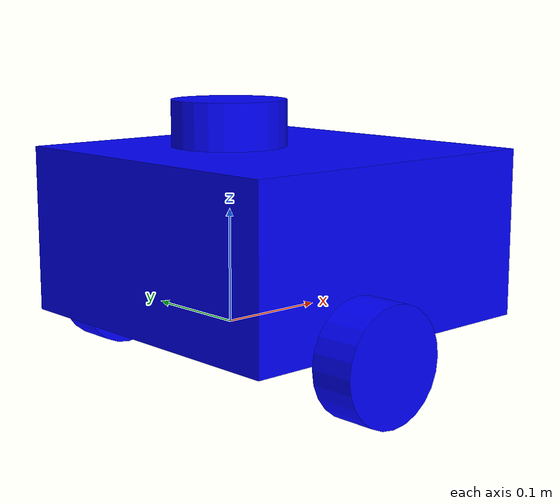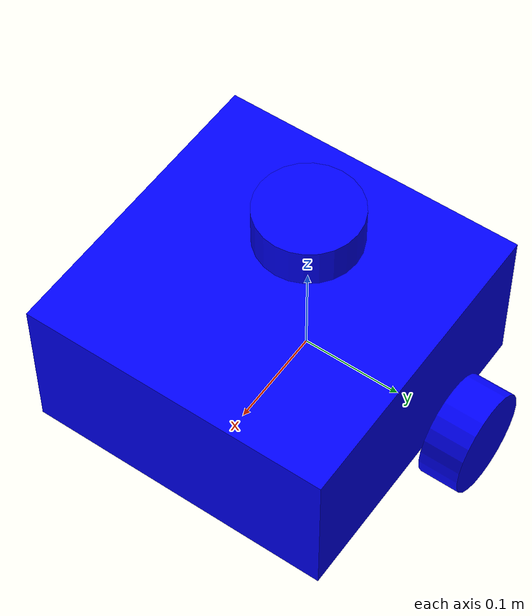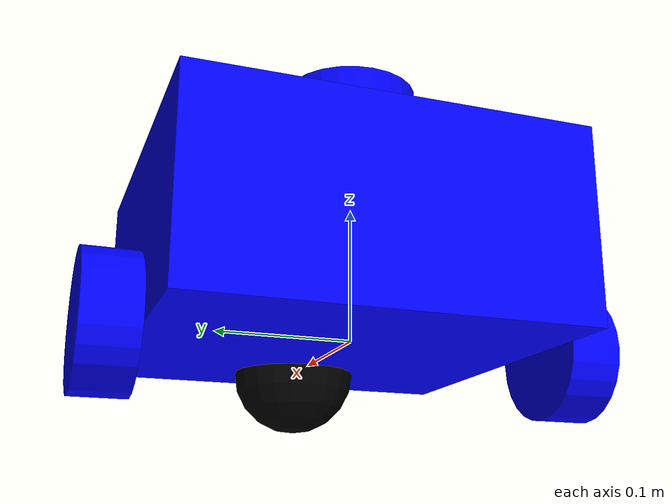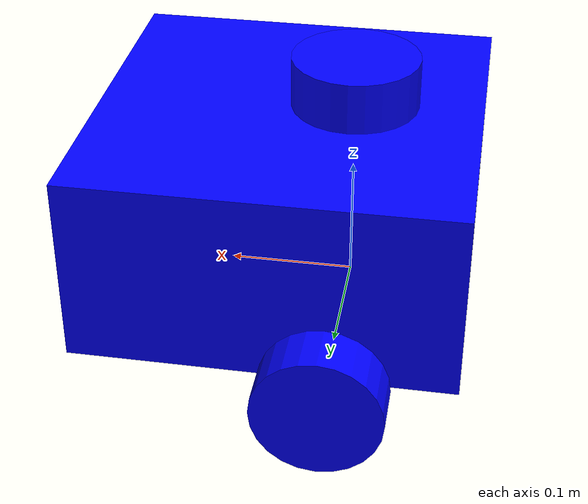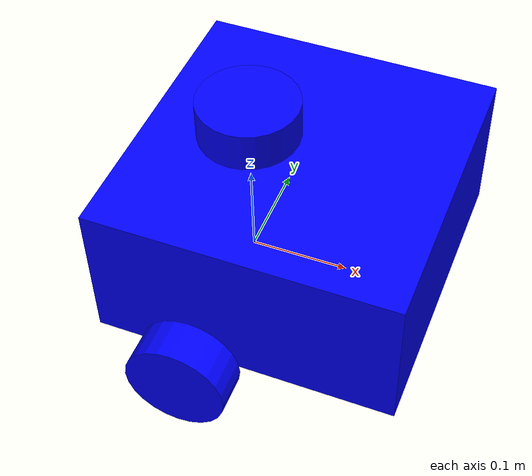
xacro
<?xml version="1.0"?>
<robot xmlns:xacro="http://www.ros.org/wiki/xacro" name="robot">

    <!-- |    This XACRO contains the integration of the different part of the robot       | -->

    <xacro:include filename="/home/enrique/catkin_ws/src/algorithm/models/robot/robot_core.xacro" />
    <xacro:include filename="/home/enrique/catkin_ws/src/algorithm/models/robot/control.xacro" />

</robot>

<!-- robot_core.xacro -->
<robot xmlns:xacro="http://www.ros.org/wiki/xacro" >

    <!-- |    This XACRO contains physical elements (the chassis and wheels ) of the robot | -->

    <xacro:include filename="/home/enrique/catkin_ws/src/algorithm/models/robot/materials.xacro" />
    <xacro:include filename="/home/enrique/catkin_ws/src/algorithm/models/robot/inertial_macros.xacro" />
    <xacro:include filename="/home/enrique/catkin_ws/src/algorithm/models/robot/sensors.xacro" />

    <!--BASE LINK-->

    <link name="base_link">

    </link>

    <!--CHASSIS LINK-->

    <joint name="chassis_joint" type="fixed">
        <parent link="base_link" />
        <child link="chassis" />
        <!--Origin of the joint-->
        <origin xyz="-0.1 0 0" />
    </joint>

    <link name="chassis">
        <visual>
            <!-- Origin of the box -->
            <origin xyz="0.15 0 0.075" />
            <geometry>
                <!--Geometry of the chassis (0.3(x dimension in meters), 0.3(y dimension in meters), 0.15 (z dimension in meters))-->
                <box size="0.3 0.3 0.15" />
            </geometry>
            <!--Material-->
            <xacro:blue_material />
        </visual>
        <collision name="chassis_link_bump_sensor_collision">
            <!-- Origin of the box -->
            <origin xyz="0.15 0 0.075" />
            <geometry>
                <!--Geometry of the chassis (0.3(x dimension in meters), 0.3(y dimension in meters), 0.15 (z dimension in meters))-->
                <box size="0.3 0.3 0.15" />
            </geometry>
        </collision>
        <xacro:inertial_box mass="0.5" x="0.3" y="0.3" z="0.15">
            <origin xyz="0.15 0 0.075" rpy="0 0 0" />
        </xacro:inertial_box>
    </link>

    <xacro:blue_gazebo_material object="chassis" />

    <!-- LEFT WHEEL JOINT-->

    <joint name="left_wheel_joint" type="continuous">
        <parent link="base_link" />
        <child link="left_wheel" />
        <origin xyz="0 0.175 0" rpy ="-${pi/2} 0 0" />
        <axis xyz="0 0 1" />
    </joint>

    <link name="left_wheel">
        <visual>
            <geometry>
                <cylinder radius="0.05" length="0.04" />
            </geometry>
            <xacro:blue_material />
        </visual>
        <collision name="left_wheel_link_bump_sensor_collision">
            <geometry>
                <cylinder radius="0.05" length="0.04" />
            </geometry>
        </collision>
        <xacro:inertial_cylinder mass="0.1" length="0.04" radius="0.05">
            <origin xyz="0 0 0" rpy="0 0 0"/>
        </xacro:inertial_cylinder>
    </link>

    <xacro:blue_gazebo_material object="left_wheel" />

    <!-- RIGHT WHEEL JOINT-->

    <joint name="right_wheel_joint" type="continuous">
        <parent link="base_link" />
        <child link="right_wheel" />
        <origin xyz="0 -0.175 0" rpy ="${pi/2} 0 0" />
        <axis xyz="0 0 -1" />
    </joint>

    <link name="right_wheel">
        <visual>
            <geometry>
                <cylinder radius="0.05" length="0.04" />
            </geometry>
            <xacro:blue_material />
        </visual>
        <collision name="right_wheel_link_bump_sensor_collision">
            <geometry>
                <cylinder radius="0.05" length="0.04" />
            </geometry>
        </collision>
        <xacro:inertial_cylinder mass="0.1" length="0.04" radius="0.05">
            <origin xyz="0 0 0" rpy="0 0 0"/>
        </xacro:inertial_cylinder>
    </link>

    <xacro:blue_gazebo_material object="right_wheel" />

    <!-- CASTER WHEEL LINK -->

    <joint name="caster_wheel_joint" type="fixed">
        <parent link="chassis" />
        <child link="caster_wheel" />
        <origin xyz="0.24 0 0" />
    </joint>

    <link name="caster_wheel">
        <visual>
            <geometry>
                <sphere radius="0.05" />
            </geometry>
            <xacro:black_material />
        </visual>
        <collision>
            <geometry>
                <sphere radius="0.05" />
            </geometry>
        </collision>
        <xacro:inertial_sphere mass="0.1" radius="0.05">
            <origin xyz="0 0 0" rpy="0 0 0"/>
        </xacro:inertial_sphere>
    </link>

    <xacro:black_gazebo_material object="caster_wheel" />
    <gazebo reference="caster_wheel">
        <!-- Reduce the friction of the caster wheel with the enviroment -->
        <mu1 value="0.001" />
        <mu2 value="0.001" />
    </gazebo>

</robot>

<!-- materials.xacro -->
<robot xmlns:xacro="http://www.ros.org/wiki/xacro" >

<!-- |    This XACRO contains the colors of the parts of the robot                     | -->
    <xacro:macro name="blue_material">
        <material name="blue">
            <!-- The colors are RGB plus alpha (transparency) -->
            <color rgba="0 0 1 1.0" />
        </material>
    </xacro:macro>

    <xacro:macro name="white_material">
        <material name="white">
            <!-- The colors are RGB plus alpha (transparency) -->
            <color rgba="0 0 1 1.0" />
        </material>
    </xacro:macro>

    <xacro:macro name="black_material">
        <material name="black">
            <!-- The colors are RGB plus alpha (transparency) -->
            <color rgba="0 0 0 1.0" />
        </material>
    </xacro:macro>

    <!-- Gazebo Materials -->
    <xacro:macro name="blue_gazebo_material" params="object">
        <gazebo reference="${object}">
            <material>Gazebo/Blue</material>
        </gazebo>
    </xacro:macro>

    <xacro:macro name="white_gazebo_material" params="object">
        <gazebo reference="${object}">
            <material>Gazebo/White</material>
        </gazebo>
    </xacro:macro>

    <xacro:macro name="black_gazebo_material" params="object">
        <gazebo reference="${object}">
            <material>Gazebo/Blue</material>
        </gazebo>
    </xacro:macro>

</robot>

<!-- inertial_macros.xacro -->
<robot xmlns:xacro="http://www.ros.org/wiki/xacro" >

    <!-- The inertial calculations was taken from https://en.wikipedia.org/wiki/List_of_moments_of_inertia -->

    <xacro:macro name="inertial_sphere" params="mass radius *origin">
        <inertial>
            <xacro:insert_block name="origin"/>
            <mass value="${mass}" />
            <inertia ixx="${(2/5) * mass * (radius*radius)}" ixy="0.0" ixz="0.0"
                    iyy="${(2/5) * mass * (radius*radius)}" iyz="0.0"
                    izz="${(2/5) * mass * (radius*radius)}" />
        </inertial>
    </xacro:macro>

    <xacro:macro name="inertial_box" params="mass x y z *origin">
        <inertial>
            <xacro:insert_block name="origin"/>
            <mass value="${mass}" />
            <inertia ixx="${(1/12) * mass * (y*y+z*z)}" ixy="0.0" ixz="0.0"
                    iyy="${(1/12) * mass * (x*x+z*z)}" iyz="0.0"
                    izz="${(1/12) * mass * (x*x+y*y)}" />
        </inertial>
    </xacro:macro>

    <xacro:macro name="inertial_cylinder" params="mass length radius *origin">
        <inertial>
            <xacro:insert_block name="origin"/>
            <mass value="${mass}" />
            <inertia ixx="${(1/12) * mass * (3*radius*radius + length*length)}" ixy="0.0" ixz="0.0"
                    iyy="${(1/12) * mass * (3*radius*radius + length*length)}" iyz="0.0"
                    izz="${(1/2) * mass * (radius*radius)}" />
        </inertial>
    </xacro:macro>

</robot>

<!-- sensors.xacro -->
<robot xmlns:xacro="http://www.ros.org/wiki/xacro" name="robot">

    <!-- |                 This XACRO contains the sensors of the robot                    | -->

    <xacro:include filename="/home/enrique/catkin_ws/src/algorithm/models/robot/materials.xacro" />
    <xacro:include filename="/home/enrique/catkin_ws/src/algorithm/models/robot/inertial_macros.xacro" />

    <!--    Laser sensor    -->

    <joint name="laser_joint" type="fixed">
        <parent link="chassis"/>
        <child link="hokuyo_link"/>
        <origin xyz="0.1 0 0.175" rpy="0 0 0"/>
    </joint>

    <link name="hokuyo_link">
        <visual>
            <geometry>
                <cylinder radius="0.05" length="0.04"/>
            </geometry>
            <xacro:white_material />
        </visual>
        <collision>
            <geometry>
                <cylinder radius="0.05" length="0.04"/>
            </geometry>
        </collision>
        <xacro:inertial_cylinder mass="0.1" length="0.04" radius="0.05">
            <origin xyz="0 0 0" rpy="0 0 0"/>
        </xacro:inertial_cylinder>
    </link>

    <xacro:white_gazebo_material object="laser_frame" />

    <!-- hokuyo -->
    <gazebo reference="hokuyo_link">
        <sensor type="gpu_ray" name="head_hokuyo_sensor">
            <pose>0 0 0 0 0 0</pose>
            <visualize>false</visualize>
            <update_rate>10</update_rate>
            <ray>
                <scan>
                <horizontal>
                    <samples>360</samples>
                    <resolution>1</resolution>
                    <min_angle>-3.14</min_angle>
                    <max_angle>3.14</max_angle>
                </horizontal>
                </scan>
                <range>
                    <min>0.10</min>
                    <max>30.0</max>
                    <resolution>0.01</resolution>
                </range>
            </ray>
            <plugin name="gazebo_ros_head_hokuyo_controller" filename="libgazebo_ros_gpu_laser.so">
                <topicName>/laser/scan</topicName>
                <frameName>hokuyo_link</frameName>
            </plugin>
        </sensor>
    </gazebo>

    <!--    Chassis contact sensor    -->

    <gazebo reference="chassis">
        <sensor name="contactsensor_sensor" type="contact">
          <selfCollide>false</selfCollide>
          <alwaysOn>true</alwaysOn>
          <contact>
            <collision>base_link_fixed_joint_lump__chassis_bump_sensor_collision_collision</collision>
          </contact>
          <plugin filename="libgazebo_ros_bumper.so" name="chassis_plugin">
            <bumperTopicName>/robot/chassis_contact</bumperTopicName>
            <frameName>chassis</frameName>
          </plugin>
        </sensor>
      </gazebo>

      <!--    Left wheel contact sensor    -->

      <gazebo reference="left_wheel">
        <sensor name="left_wheel_contactsensor_sensor" type="contact">
          <selfCollide>false</selfCollide>
          <alwaysOn>true</alwaysOn>
          <contact>
            <collision>left_wheel_link_bump_sensor_collision_collision</collision>
          </contact>
          <plugin filename="libgazebo_ros_bumper.so" name="left_wheel_link_plugin">
            <bumperTopicName>/robot/left_wheel_contact</bumperTopicName>
            <frameName>left_wheel</frameName>
          </plugin>
        </sensor>
      </gazebo>

      <!--    Right wheel contact sensor    -->

      <gazebo reference="right_wheel">
        <sensor name="right_wheel_contactsensor_sensor" type="contact">
          <selfCollide>false</selfCollide>
          <alwaysOn>true</alwaysOn>
          <contact>
            <collision>right_wheel_link_bump_sensor_collision_collision</collision>
          </contact>
          <plugin filename="libgazebo_ros_bumper.so" name="right_wheel_link_plugin">
            <bumperTopicName>/robot/right_wheel_contact</bumperTopicName>
            <frameName>right_wheel</frameName>
          </plugin>
        </sensor>
      </gazebo>

</robot>
